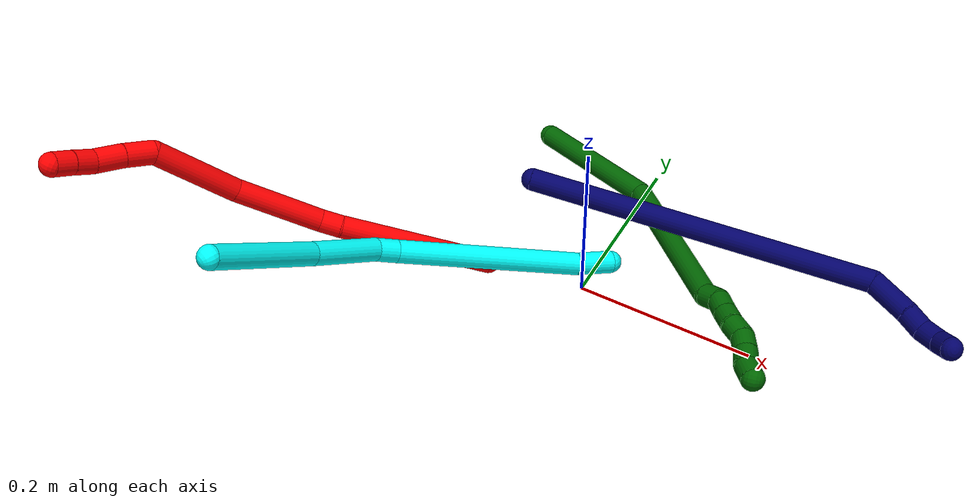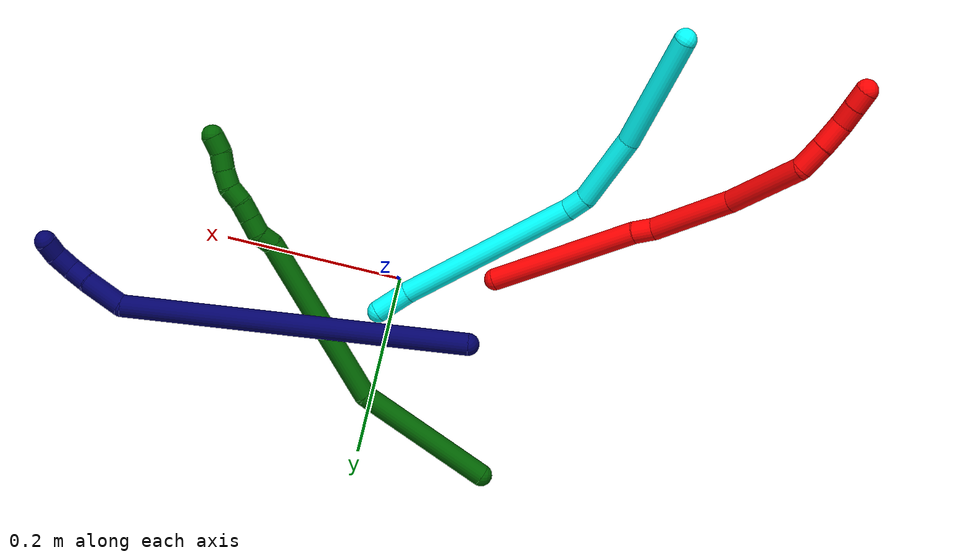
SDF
<sdf version="1.7">
 <world name="default">
  <model name="photoneo_s_sensor">
   <static>1</static>
   <pose>0 0 2 1.57079 1.57079 3.14159</pose>
   <link name="link">
    <inertial><mass>0.1</mass></inertial>
    <sensor name="sensor" type="depth">
     <update_rate>30</update_rate>
     <camera>
      <horizontal_fov>1.22</horizontal_fov>
      <image><width>1920</width><height>1200</height><format>B8G8R8</format></image>
      <clip><near>0.1</near><far>4</far></clip>
      <depth_camera><output>points</output></depth_camera>
     </camera>
     <plugin name="camera_plugin" filename="libgazebo_ros_depth_camera.so">
      <baseline>0.2</baseline>
      <alwaysOn>1</alwaysOn>
      <updateRate>0.0</updateRate>
      <cameraName>camera_ir</cameraName>
      <imageTopicName>/camera/color/image_raw</imageTopicName>
      <cameraInfoTopicName>/camera/color/camera_info</cameraInfoTopicName>
      <depthImageTopicName>/camera/depth/image_raw</depthImageTopicName>
      <depthImageCameraInfoTopicName>/camera/depth/camera_info</depthImageCameraInfoTopicName>
      <pointCloudTopicName>/camera/depth/points</pointCloudTopicName>
      <frameName>fr_optical</frameName>
      <pointCloudCutoff>0.1</pointCloudCutoff>
      <pointCloudCutoffMax>2.0</pointCloudCutoffMax>
      <distortionK1>0</distortionK1>
      <distortionK2>0</distortionK2>
      <distortionK3>0</distortionK3>
      <distortionT1>0</distortionT1>
      <distortionT2>0</distortionT2>
      <CxPrime>0</CxPrime>
      <Cx>0</Cx>
      <Cy>0</Cy>
      <focalLength>0</focalLength>
      <hackBaseline>0</hackBaseline>
     </plugin>
    </sensor>
   </link>
  </model>
  <model name="2">
   <static>0</static>
   <link name="2">
    <collision name="collision-cylinder-e_1_1_4">
     <pose>-0.020642 -0.007732 0.083497 0.092337 -0.241371 -0.011206</pose>
     <geometry><cylinder><radius>0.0125</radius><length>0.172715</length></cylinder></geometry>
     <surface>
      <friction><ode><mu>1.16</mu><mu2>1.16</mu2><slip1>0</slip1><slip2>0</slip2></ode></friction>
      <contact><ode><kp>1e+06</kp><kd>1</kd><max_vel>0</max_vel><min_depth>0.001</min_depth></ode></contact>
     </surface>
    </collision>
    <visual name="visual-cylinder-e_1_1_4">
     <pose>-0.020642 -0.007732 0.083497 0.092337 -0.241371 -0.011206</pose>
     <geometry><cylinder><radius>0.0125</radius><length>0.172715</length></cylinder></geometry>
     <material><ambient>1 0 0 1</ambient></material>
    </visual>
    <collision name="collision-cylinder-e_2_4_5">
     <pose>-0.04294 -0.015278 0.178597 -0.015965 -0.141639 0.001133</pose>
     <geometry><cylinder><radius>0.0125</radius><length>0.023446</length></cylinder></geometry>
     <surface>
      <friction><ode><mu>1.16</mu><mu2>1.16</mu2><slip1>0</slip1><slip2>0</slip2></ode></friction>
      <contact><ode><kp>1e+06</kp><kd>1</kd><max_vel>0</max_vel><min_depth>0.001</min_depth></ode></contact>
     </surface>
    </collision>
    <visual name="visual-cylinder-e_2_4_5">
     <pose>-0.04294 -0.015278 0.178597 -0.015965 -0.141639 0.001133</pose>
     <geometry><cylinder><radius>0.0125</radius><length>0.023446</length></cylinder></geometry>
     <material><ambient>1 0 0 1</ambient></material>
    </visual>
    <collision name="collision-cylinder-e_3_5_6">
     <pose>-0.05367 -0.027262 0.23691 0.254862 -0.185852 -0.02388</pose>
     <geometry><cylinder><radius>0.0125</radius><length>0.098227</length></cylinder></geometry>
     <surface>
      <friction><ode><mu>1.16</mu><mu2>1.16</mu2><slip1>0</slip1><slip2>0</slip2></ode></friction>
      <contact><ode><kp>1e+06</kp><kd>1</kd><max_vel>0</max_vel><min_depth>0.001</min_depth></ode></contact>
     </surface>
    </collision>
    <visual name="visual-cylinder-e_3_5_6">
     <pose>-0.05367 -0.027262 0.23691 0.254862 -0.185852 -0.02388</pose>
     <geometry><cylinder><radius>0.0125</radius><length>0.098227</length></cylinder></geometry>
     <material><ambient>1 0 0 1</ambient></material>
    </visual>
    <collision name="collision-cylinder-e_4_6_7">
     <pose>-0.071015 -0.060711 0.327048 0.455612 -0.169361 -0.039352</pose>
     <geometry><cylinder><radius>0.0125</radius><length>0.09813</length></cylinder></geometry>
     <surface>
      <friction><ode><mu>1.16</mu><mu2>1.16</mu2><slip1>0</slip1><slip2>0</slip2></ode></friction>
      <contact><ode><kp>1e+06</kp><kd>1</kd><max_vel>0</max_vel><min_depth>0.001</min_depth></ode></contact>
     </surface>
    </collision>
    <visual name="visual-cylinder-e_4_6_7">
     <pose>-0.071015 -0.060711 0.327048 0.455612 -0.169361 -0.039352</pose>
     <geometry><cylinder><radius>0.0125</radius><length>0.09813</length></cylinder></geometry>
     <material><ambient>1 0 0 1</ambient></material>
    </visual>
    <collision name="collision-cylinder-e_5_7_8">
     <pose>-0.089216 -0.085732 0.382378 0.304543 -0.672313 -0.10714</pose>
     <geometry><cylinder><radius>0.0125</radius><length>0.031889</length></cylinder></geometry>
     <surface>
      <friction><ode><mu>1.16</mu><mu2>1.16</mu2><slip1>0</slip1><slip2>0</slip2></ode></friction>
      <contact><ode><kp>1e+06</kp><kd>1</kd><max_vel>0</max_vel><min_depth>0.001</min_depth></ode></contact>
     </surface>
    </collision>
    <visual name="visual-cylinder-e_5_7_8">
     <pose>-0.089216 -0.085732 0.382378 0.304543 -0.672313 -0.10714</pose>
     <geometry><cylinder><radius>0.0125</radius><length>0.031889</length></cylinder></geometry>
     <material><ambient>1 0 0 1</ambient></material>
    </visual>
    <collision name="collision-cylinder-e_6_8_9">
     <pose>-0.109859 -0.092908 0.405238 0.303796 -0.750654 -0.12048</pose>
     <geometry><cylinder><radius>0.0125</radius><length>0.031411</length></cylinder></geometry>
     <surface>
      <friction><ode><mu>1.16</mu><mu2>1.16</mu2><slip1>0</slip1><slip2>0</slip2></ode></friction>
      <contact><ode><kp>1e+06</kp><kd>1</kd><max_vel>0</max_vel><min_depth>0.001</min_depth></ode></contact>
     </surface>
    </collision>
    <visual name="visual-cylinder-e_6_8_9">
     <pose>-0.109859 -0.092908 0.405238 0.303796 -0.750654 -0.12048</pose>
     <geometry><cylinder><radius>0.0125</radius><length>0.031411</length></cylinder></geometry>
     <material><ambient>1 0 0 1</ambient></material>
    </visual>
    <collision name="collision-cylinder-e_7_9_10">
     <pose>-0.127545 -0.101467 0.4239 0.586844 -0.645927 -0.201559</pose>
     <geometry><cylinder><radius>0.0125</radius><length>0.02317</length></cylinder></geometry>
     <surface>
      <friction><ode><mu>1.16</mu><mu2>1.16</mu2><slip1>0</slip1><slip2>0</slip2></ode></friction>
      <contact><ode><kp>1e+06</kp><kd>1</kd><max_vel>0</max_vel><min_depth>0.001</min_depth></ode></contact>
     </surface>
    </collision>
    <visual name="visual-cylinder-e_7_9_10">
     <pose>-0.127545 -0.101467 0.4239 0.586844 -0.645927 -0.201559</pose>
     <geometry><cylinder><radius>0.0125</radius><length>0.02317</length></cylinder></geometry>
     <material><ambient>1 0 0 1</ambient></material>
    </visual>
    <collision name="collision-cylinder-e_8_10_2">
     <pose>-0.141103 -0.110845 0.438598 0.546604 -0.677259 -0.196815</pose>
     <geometry><cylinder><radius>0.0125</radius><length>0.021012</length></cylinder></geometry>
     <surface>
      <friction><ode><mu>1.16</mu><mu2>1.16</mu2><slip1>0</slip1><slip2>0</slip2></ode></friction>
      <contact><ode><kp>1e+06</kp><kd>1</kd><max_vel>0</max_vel><min_depth>0.001</min_depth></ode></contact>
     </surface>
    </collision>
    <visual name="visual-cylinder-e_8_10_2">
     <pose>-0.141103 -0.110845 0.438598 0.546604 -0.677259 -0.196815</pose>
     <geometry><cylinder><radius>0.0125</radius><length>0.021012</length></cylinder></geometry>
     <material><ambient>1 0 0 1</ambient></material>
    </visual>
    <collision name="collision-sphere-2">
     <pose>-0.147686 -0.115101 0.445592 0 -0 0</pose>
     <geometry><sphere><radius>0.0125</radius></sphere></geometry>
     <surface>
      <friction><ode><mu>1.16</mu><mu2>1.16</mu2><slip1>0</slip1><slip2>0</slip2></ode></friction>
      <contact><ode><kp>1e+06</kp><kd>1</kd><max_vel>0</max_vel><min_depth>0.001</min_depth></ode></contact>
     </surface>
    </collision>
    <visual name="visual-sphere-2">
     <pose>-0.147686 -0.115101 0.445592 0 -0 0</pose>
     <geometry><sphere><radius>0.0125</radius></sphere></geometry>
     <material><ambient>1 0 0 1</ambient></material>
    </visual>
    <collision name="collision-sphere-10">
     <pose>-0.134519 -0.106589 0.431604 0 -0 0</pose>
     <geometry><sphere><radius>0.0125</radius></sphere></geometry>
     <surface>
      <friction><ode><mu>1.16</mu><mu2>1.16</mu2><slip1>0</slip1><slip2>0</slip2></ode></friction>
      <contact><ode><kp>1e+06</kp><kd>1</kd><max_vel>0</max_vel><min_depth>0.001</min_depth></ode></contact>
     </surface>
    </collision>
    <visual name="visual-sphere-10">
     <pose>-0.134519 -0.106589 0.431604 0 -0 0</pose>
     <geometry><sphere><radius>0.0125</radius></sphere></geometry>
     <material><ambient>1 0 0 1</ambient></material>
    </visual>
    <collision name="collision-sphere-9">
     <pose>-0.120572 -0.096344 0.416197 0 -0 0</pose>
     <geometry><sphere><radius>0.0125</radius></sphere></geometry>
     <surface>
      <friction><ode><mu>1.16</mu><mu2>1.16</mu2><slip1>0</slip1><slip2>0</slip2></ode></friction>
      <contact><ode><kp>1e+06</kp><kd>1</kd><max_vel>0</max_vel><min_depth>0.001</min_depth></ode></contact>
     </surface>
    </collision>
    <visual name="visual-sphere-9">
     <pose>-0.120572 -0.096344 0.416197 0 -0 0</pose>
     <geometry><sphere><radius>0.0125</radius></sphere></geometry>
     <material><ambient>1 0 0 1</ambient></material>
    </visual>
    <collision name="collision-sphere-4">
     <pose>-0.041285 -0.015464 0.166993 0 -0 0</pose>
     <geometry><sphere><radius>0.0125</radius></sphere></geometry>
     <surface>
      <friction><ode><mu>1.16</mu><mu2>1.16</mu2><slip1>0</slip1><slip2>0</slip2></ode></friction>
      <contact><ode><kp>1e+06</kp><kd>1</kd><max_vel>0</max_vel><min_depth>0.001</min_depth></ode></contact>
     </surface>
    </collision>
    <visual name="visual-sphere-4">
     <pose>-0.041285 -0.015464 0.166993 0 -0 0</pose>
     <geometry><sphere><radius>0.0125</radius></sphere></geometry>
     <material><ambient>1 0 0 1</ambient></material>
    </visual>
    <collision name="collision-sphere-1">
     <geometry><sphere><radius>0.0125</radius></sphere></geometry>
     <surface>
      <friction><ode><mu>1.16</mu><mu2>1.16</mu2><slip1>0</slip1><slip2>0</slip2></ode></friction>
      <contact><ode><kp>1e+06</kp><kd>1</kd><max_vel>0</max_vel><min_depth>0.001</min_depth></ode></contact>
     </surface>
    </collision>
    <visual name="visual-sphere-1">
     <geometry><sphere><radius>0.0125</radius></sphere></geometry>
     <material><ambient>1 0 0 1</ambient></material>
    </visual>
    <collision name="collision-sphere-8">
     <pose>-0.099146 -0.089473 0.394279 0 -0 0</pose>
     <geometry><sphere><radius>0.0125</radius></sphere></geometry>
     <surface>
      <friction><ode><mu>1.16</mu><mu2>1.16</mu2><slip1>0</slip1><slip2>0</slip2></ode></friction>
      <contact><ode><kp>1e+06</kp><kd>1</kd><max_vel>0</max_vel><min_depth>0.001</min_depth></ode></contact>
     </surface>
    </collision>
    <visual name="visual-sphere-8">
     <pose>-0.099146 -0.089473 0.394279 0 -0 0</pose>
     <geometry><sphere><radius>0.0125</radius></sphere></geometry>
     <material><ambient>1 0 0 1</ambient></material>
    </visual>
    <collision name="collision-sphere-5">
     <pose>-0.044595 -0.015093 0.190202 0 -0 0</pose>
     <geometry><sphere><radius>0.0125</radius></sphere></geometry>
     <surface>
      <friction><ode><mu>1.16</mu><mu2>1.16</mu2><slip1>0</slip1><slip2>0</slip2></ode></friction>
      <contact><ode><kp>1e+06</kp><kd>1</kd><max_vel>0</max_vel><min_depth>0.001</min_depth></ode></contact>
     </surface>
    </collision>
    <visual name="visual-sphere-5">
     <pose>-0.044595 -0.015093 0.190202 0 -0 0</pose>
     <geometry><sphere><radius>0.0125</radius></sphere></geometry>
     <material><ambient>1 0 0 1</ambient></material>
    </visual>
    <collision name="collision-sphere-6">
     <pose>-0.062745 -0.039431 0.283618 0 -0 0</pose>
     <geometry><sphere><radius>0.0125</radius></sphere></geometry>
     <surface>
      <friction><ode><mu>1.16</mu><mu2>1.16</mu2><slip1>0</slip1><slip2>0</slip2></ode></friction>
      <contact><ode><kp>1e+06</kp><kd>1</kd><max_vel>0</max_vel><min_depth>0.001</min_depth></ode></contact>
     </surface>
    </collision>
    <visual name="visual-sphere-6">
     <pose>-0.062745 -0.039431 0.283618 0 -0 0</pose>
     <geometry><sphere><radius>0.0125</radius></sphere></geometry>
     <material><ambient>1 0 0 1</ambient></material>
    </visual>
    <collision name="collision-sphere-7">
     <pose>-0.079285 -0.081992 0.370478 0 -0 0</pose>
     <geometry><sphere><radius>0.0125</radius></sphere></geometry>
     <surface>
      <friction><ode><mu>1.16</mu><mu2>1.16</mu2><slip1>0</slip1><slip2>0</slip2></ode></friction>
      <contact><ode><kp>1e+06</kp><kd>1</kd><max_vel>0</max_vel><min_depth>0.001</min_depth></ode></contact>
     </surface>
    </collision>
    <visual name="visual-sphere-7">
     <pose>-0.079285 -0.081992 0.370478 0 -0 0</pose>
     <geometry><sphere><radius>0.0125</radius></sphere></geometry>
     <material><ambient>1 0 0 1</ambient></material>
    </visual>
    <inertial>
     <pose>-0.058057 -0.041323 0.235866 0 -0 0</pose>
     <mass>0.5</mass>
     <inertia>
      <ixx>0.000574</ixx>
      <ixy>0</ixy>
      <ixz>0</ixz>
      <iyy>0.000581</iyy>
      <iyz>0</iyz>
      <izz>0.000274</izz>
     </inertia>
    </inertial>
   </link>
   <pose>-0.104401 -0.025162 0.011535 -1.15652 -0.284355 1.72975</pose>
  </model>
  <model name="3">
   <static>0</static>
   <link name="3">
    <collision name="collision-cylinder-e_1_1_4">
     <pose>0.040071 0.000463 -0.057289 -3.13351 0.610347 -3.11593</pose>
     <geometry><cylinder><radius>0.0125</radius><length>0.139827</length></cylinder></geometry>
     <surface>
      <friction><ode><mu>1.16</mu><mu2>1.16</mu2><slip1>0</slip1><slip2>0</slip2></ode></friction>
      <contact><ode><kp>1e+06</kp><kd>1</kd><max_vel>0</max_vel><min_depth>0.001</min_depth></ode></contact>
     </surface>
    </collision>
    <visual name="visual-cylinder-e_1_1_4">
     <pose>0.040071 0.000463 -0.057289 -3.13351 0.610347 -3.11593</pose>
     <geometry><cylinder><radius>0.0125</radius><length>0.139827</length></cylinder></geometry>
     <material><ambient>0.003922 1 0.996078 1</ambient></material>
    </visual>
    <collision name="collision-cylinder-e_2_4_5">
     <pose>0.099858 0.005992 -0.152269 -3.008 0.478276 -2.60602</pose>
     <geometry><cylinder><radius>0.0125</radius><length>0.085675</length></cylinder></geometry>
     <surface>
      <friction><ode><mu>1.16</mu><mu2>1.16</mu2><slip1>0</slip1><slip2>0</slip2></ode></friction>
      <contact><ode><kp>1e+06</kp><kd>1</kd><max_vel>0</max_vel><min_depth>0.001</min_depth></ode></contact>
     </surface>
    </collision>
    <visual name="visual-cylinder-e_2_4_5">
     <pose>0.099858 0.005992 -0.152269 -3.008 0.478276 -2.60602</pose>
     <geometry><cylinder><radius>0.0125</radius><length>0.085675</length></cylinder></geometry>
     <material><ambient>0.003922 1 0.996078 1</ambient></material>
    </visual>
    <collision name="collision-cylinder-e_3_5_6">
     <pose>0.123813 0.016175 -0.200367 -2.68455 0.350474 -1.30131</pose>
     <geometry><cylinder><radius>0.0125</radius><length>0.024696</length></cylinder></geometry>
     <surface>
      <friction><ode><mu>1.16</mu><mu2>1.16</mu2><slip1>0</slip1><slip2>0</slip2></ode></friction>
      <contact><ode><kp>1e+06</kp><kd>1</kd><max_vel>0</max_vel><min_depth>0.001</min_depth></ode></contact>
     </surface>
    </collision>
    <visual name="visual-cylinder-e_3_5_6">
     <pose>0.123813 0.016175 -0.200367 -2.68455 0.350474 -1.30131</pose>
     <geometry><cylinder><radius>0.0125</radius><length>0.024696</length></cylinder></geometry>
     <material><ambient>0.003922 1 0.996078 1</ambient></material>
    </visual>
    <collision name="collision-cylinder-e_4_6_7">
     <pose>0.151073 0.075208 -0.297197 -2.58381 0.222259 -0.743178</pose>
     <geometry><cylinder><radius>0.0125</radius><length>0.208861</length></cylinder></geometry>
     <surface>
      <friction><ode><mu>1.16</mu><mu2>1.16</mu2><slip1>0</slip1><slip2>0</slip2></ode></friction>
      <contact><ode><kp>1e+06</kp><kd>1</kd><max_vel>0</max_vel><min_depth>0.001</min_depth></ode></contact>
     </surface>
    </collision>
    <visual name="visual-cylinder-e_4_6_7">
     <pose>0.151073 0.075208 -0.297197 -2.58381 0.222259 -0.743178</pose>
     <geometry><cylinder><radius>0.0125</radius><length>0.208861</length></cylinder></geometry>
     <material><ambient>0.003922 1 0.996078 1</ambient></material>
    </visual>
    <collision name="collision-cylinder-e_5_7_2">
     <pose>0.177184 0.138073 -0.40177 -2.68354 0.151568 -0.629753</pose>
     <geometry><cylinder><radius>0.0125</radius><length>0.040942</length></cylinder></geometry>
     <surface>
      <friction><ode><mu>1.16</mu><mu2>1.16</mu2><slip1>0</slip1><slip2>0</slip2></ode></friction>
      <contact><ode><kp>1e+06</kp><kd>1</kd><max_vel>0</max_vel><min_depth>0.001</min_depth></ode></contact>
     </surface>
    </collision>
    <visual name="visual-cylinder-e_5_7_2">
     <pose>0.177184 0.138073 -0.40177 -2.68354 0.151568 -0.629753</pose>
     <geometry><cylinder><radius>0.0125</radius><length>0.040942</length></cylinder></geometry>
     <material><ambient>0.003922 1 0.996078 1</ambient></material>
    </visual>
    <collision name="collision-sphere-2">
     <pose>0.180274 0.147021 -0.41992 0 -0 0</pose>
     <geometry><sphere><radius>0.0125</radius></sphere></geometry>
     <surface>
      <friction><ode><mu>1.16</mu><mu2>1.16</mu2><slip1>0</slip1><slip2>0</slip2></ode></friction>
      <contact><ode><kp>1e+06</kp><kd>1</kd><max_vel>0</max_vel><min_depth>0.001</min_depth></ode></contact>
     </surface>
    </collision>
    <visual name="visual-sphere-2">
     <pose>0.180274 0.147021 -0.41992 0 -0 0</pose>
     <geometry><sphere><radius>0.0125</radius></sphere></geometry>
     <material><ambient>0.003922 1 0.996078 1</ambient></material>
    </visual>
    <collision name="collision-sphere-7">
     <pose>0.174093 0.129124 -0.38362 0 -0 0</pose>
     <geometry><sphere><radius>0.0125</radius></sphere></geometry>
     <surface>
      <friction><ode><mu>1.16</mu><mu2>1.16</mu2><slip1>0</slip1><slip2>0</slip2></ode></friction>
      <contact><ode><kp>1e+06</kp><kd>1</kd><max_vel>0</max_vel><min_depth>0.001</min_depth></ode></contact>
     </surface>
    </collision>
    <visual name="visual-sphere-7">
     <pose>0.174093 0.129124 -0.38362 0 -0 0</pose>
     <geometry><sphere><radius>0.0125</radius></sphere></geometry>
     <material><ambient>0.003922 1 0.996078 1</ambient></material>
    </visual>
    <collision name="collision-sphere-6">
     <pose>0.128053 0.021293 -0.210774 0 -0 0</pose>
     <geometry><sphere><radius>0.0125</radius></sphere></geometry>
     <surface>
      <friction><ode><mu>1.16</mu><mu2>1.16</mu2><slip1>0</slip1><slip2>0</slip2></ode></friction>
      <contact><ode><kp>1e+06</kp><kd>1</kd><max_vel>0</max_vel><min_depth>0.001</min_depth></ode></contact>
     </surface>
    </collision>
    <visual name="visual-sphere-6">
     <pose>0.128053 0.021293 -0.210774 0 -0 0</pose>
     <geometry><sphere><radius>0.0125</radius></sphere></geometry>
     <material><ambient>0.003922 1 0.996078 1</ambient></material>
    </visual>
    <collision name="collision-sphere-5">
     <pose>0.119574 0.011057 -0.18996 0 -0 0</pose>
     <geometry><sphere><radius>0.0125</radius></sphere></geometry>
     <surface>
      <friction><ode><mu>1.16</mu><mu2>1.16</mu2><slip1>0</slip1><slip2>0</slip2></ode></friction>
      <contact><ode><kp>1e+06</kp><kd>1</kd><max_vel>0</max_vel><min_depth>0.001</min_depth></ode></contact>
     </surface>
    </collision>
    <visual name="visual-sphere-5">
     <pose>0.119574 0.011057 -0.18996 0 -0 0</pose>
     <geometry><sphere><radius>0.0125</radius></sphere></geometry>
     <material><ambient>0.003922 1 0.996078 1</ambient></material>
    </visual>
    <collision name="collision-sphere-1">
     <geometry><sphere><radius>0.0125</radius></sphere></geometry>
     <surface>
      <friction><ode><mu>1.16</mu><mu2>1.16</mu2><slip1>0</slip1><slip2>0</slip2></ode></friction>
      <contact><ode><kp>1e+06</kp><kd>1</kd><max_vel>0</max_vel><min_depth>0.001</min_depth></ode></contact>
     </surface>
    </collision>
    <visual name="visual-sphere-1">
     <geometry><sphere><radius>0.0125</radius></sphere></geometry>
     <material><ambient>0.003922 1 0.996078 1</ambient></material>
    </visual>
    <collision name="collision-sphere-4">
     <pose>0.080142 0.000926 -0.114577 0 -0 0</pose>
     <geometry><sphere><radius>0.0125</radius></sphere></geometry>
     <surface>
      <friction><ode><mu>1.16</mu><mu2>1.16</mu2><slip1>0</slip1><slip2>0</slip2></ode></friction>
      <contact><ode><kp>1e+06</kp><kd>1</kd><max_vel>0</max_vel><min_depth>0.001</min_depth></ode></contact>
     </surface>
    </collision>
    <visual name="visual-sphere-4">
     <pose>0.080142 0.000926 -0.114577 0 -0 0</pose>
     <geometry><sphere><radius>0.0125</radius></sphere></geometry>
     <material><ambient>0.003922 1 0.996078 1</ambient></material>
    </visual>
    <inertial>
     <pose>0.112047 0.044677 -0.209053 0 -0 0</pose>
     <mass>0.5</mass>
     <inertia>
      <ixx>-0.000205</ixx>
      <ixy>0</ixy>
      <ixz>0</ixz>
      <iyy>-0.000673</iyy>
      <iyz>0</iyz>
      <izz>-0.000772</izz>
     </inertia>
    </inertial>
   </link>
   <pose>-0.233705 -0.310716 0.222803 -1.26643 1.4488 3.12329</pose>
  </model>
  <model name="6">
   <static>0</static>
   <link name="6">
    <collision name="collision-cylinder-e_1_1_4">
     <pose>0.034774 -0.026853 0.06655 0.383523 0.45123 0.089063</pose>
     <geometry><cylinder><radius>0.0125</radius><length>0.159489</length></cylinder></geometry>
     <surface>
      <friction><ode><mu>1.16</mu><mu2>1.16</mu2><slip1>0</slip1><slip2>0</slip2></ode></friction>
      <contact><ode><kp>1e+06</kp><kd>1</kd><max_vel>0</max_vel><min_depth>0.001</min_depth></ode></contact>
     </surface>
    </collision>
    <visual name="visual-cylinder-e_1_1_4">
     <pose>0.034774 -0.026853 0.06655 0.383523 0.45123 0.089063</pose>
     <geometry><cylinder><radius>0.0125</radius><length>0.159489</length></cylinder></geometry>
     <material><ambient>0 0.392157 0.003922 1</ambient></material>
    </visual>
    <collision name="collision-cylinder-e_2_4_5">
     <pose>0.13651 -0.104922 0.186552 0.764032 0.735307 0.307048</pose>
     <geometry><cylinder><radius>0.0125</radius><length>0.19964</length></cylinder></geometry>
     <surface>
      <friction><ode><mu>1.16</mu><mu2>1.16</mu2><slip1>0</slip1><slip2>0</slip2></ode></friction>
      <contact><ode><kp>1e+06</kp><kd>1</kd><max_vel>0</max_vel><min_depth>0.001</min_depth></ode></contact>
     </surface>
    </collision>
    <visual name="visual-cylinder-e_2_4_5">
     <pose>0.13651 -0.104922 0.186552 0.764032 0.735307 0.307048</pose>
     <geometry><cylinder><radius>0.0125</radius><length>0.19964</length></cylinder></geometry>
     <material><ambient>0 0.392157 0.003922 1</ambient></material>
    </visual>
    <collision name="collision-cylinder-e_3_5_6">
     <pose>0.206537 -0.161778 0.247696 0.632741 0.311069 0.102572</pose>
     <geometry><cylinder><radius>0.0125</radius><length>0.020037</length></cylinder></geometry>
     <surface>
      <friction><ode><mu>1.16</mu><mu2>1.16</mu2><slip1>0</slip1><slip2>0</slip2></ode></friction>
      <contact><ode><kp>1e+06</kp><kd>1</kd><max_vel>0</max_vel><min_depth>0.001</min_depth></ode></contact>
     </surface>
    </collision>
    <visual name="visual-cylinder-e_3_5_6">
     <pose>0.206537 -0.161778 0.247696 0.632741 0.311069 0.102572</pose>
     <geometry><cylinder><radius>0.0125</radius><length>0.020037</length></cylinder></geometry>
     <material><ambient>0 0.392157 0.003922 1</ambient></material>
    </visual>
    <collision name="collision-cylinder-e_4_6_7">
     <pose>0.217012 -0.172667 0.260474 0.80102 0.79218 0.350488</pose>
     <geometry><cylinder><radius>0.0125</radius><length>0.020815</length></cylinder></geometry>
     <surface>
      <friction><ode><mu>1.16</mu><mu2>1.16</mu2><slip1>0</slip1><slip2>0</slip2></ode></friction>
      <contact><ode><kp>1e+06</kp><kd>1</kd><max_vel>0</max_vel><min_depth>0.001</min_depth></ode></contact>
     </surface>
    </collision>
    <visual name="visual-cylinder-e_4_6_7">
     <pose>0.217012 -0.172667 0.260474 0.80102 0.79218 0.350488</pose>
     <geometry><cylinder><radius>0.0125</radius><length>0.020815</length></cylinder></geometry>
     <material><ambient>0 0.392157 0.003922 1</ambient></material>
    </visual>
    <collision name="collision-cylinder-e_5_7_8">
     <pose>0.231047 -0.183575 0.270475 0.855745 0.72395 0.342001</pose>
     <geometry><cylinder><radius>0.0125</radius><length>0.020008</length></cylinder></geometry>
     <surface>
      <friction><ode><mu>1.16</mu><mu2>1.16</mu2><slip1>0</slip1><slip2>0</slip2></ode></friction>
      <contact><ode><kp>1e+06</kp><kd>1</kd><max_vel>0</max_vel><min_depth>0.001</min_depth></ode></contact>
     </surface>
    </collision>
    <visual name="visual-cylinder-e_5_7_8">
     <pose>0.231047 -0.183575 0.270475 0.855745 0.72395 0.342001</pose>
     <geometry><cylinder><radius>0.0125</radius><length>0.020008</length></cylinder></geometry>
     <material><ambient>0 0.392157 0.003922 1</ambient></material>
    </visual>
    <collision name="collision-cylinder-e_6_8_9">
     <pose>0.243966 -0.193447 0.281922 0.572828 0.680465 0.207763</pose>
     <geometry><cylinder><radius>0.0125</radius><length>0.020002</length></cylinder></geometry>
     <surface>
      <friction><ode><mu>1.16</mu><mu2>1.16</mu2><slip1>0</slip1><slip2>0</slip2></ode></friction>
      <contact><ode><kp>1e+06</kp><kd>1</kd><max_vel>0</max_vel><min_depth>0.001</min_depth></ode></contact>
     </surface>
    </collision>
    <visual name="visual-cylinder-e_6_8_9">
     <pose>0.243966 -0.193447 0.281922 0.572828 0.680465 0.207763</pose>
     <geometry><cylinder><radius>0.0125</radius><length>0.020002</length></cylinder></geometry>
     <material><ambient>0 0.392157 0.003922 1</ambient></material>
    </visual>
    <collision name="collision-cylinder-e_7_9_10">
     <pose>0.258615 -0.201987 0.291838 0.907215 0.989383 0.514312</pose>
     <geometry><cylinder><radius>0.0125</radius><length>0.020001</length></cylinder></geometry>
     <surface>
      <friction><ode><mu>1.16</mu><mu2>1.16</mu2><slip1>0</slip1><slip2>0</slip2></ode></friction>
      <contact><ode><kp>1e+06</kp><kd>1</kd><max_vel>0</max_vel><min_depth>0.001</min_depth></ode></contact>
     </surface>
    </collision>
    <visual name="visual-cylinder-e_7_9_10">
     <pose>0.258615 -0.201987 0.291838 0.907215 0.989383 0.514312</pose>
     <geometry><cylinder><radius>0.0125</radius><length>0.020001</length></cylinder></geometry>
     <material><ambient>0 0.392157 0.003922 1</ambient></material>
    </visual>
    <collision name="collision-cylinder-e_8_10_11">
     <pose>0.275241 -0.211605 0.297148 1.22148 0.972865 0.70908</pose>
     <geometry><cylinder><radius>0.0125</radius><length>0.020007</length></cylinder></geometry>
     <surface>
      <friction><ode><mu>1.16</mu><mu2>1.16</mu2><slip1>0</slip1><slip2>0</slip2></ode></friction>
      <contact><ode><kp>1e+06</kp><kd>1</kd><max_vel>0</max_vel><min_depth>0.001</min_depth></ode></contact>
     </surface>
    </collision>
    <visual name="visual-cylinder-e_8_10_11">
     <pose>0.275241 -0.211605 0.297148 1.22148 0.972865 0.70908</pose>
     <geometry><cylinder><radius>0.0125</radius><length>0.020007</length></cylinder></geometry>
     <material><ambient>0 0.392157 0.003922 1</ambient></material>
    </visual>
    <collision name="collision-cylinder-e_9_11_2">
     <pose>0.290589 -0.222258 0.303673 0.861961 0.786697 0.377085</pose>
     <geometry><cylinder><radius>0.0125</radius><length>0.02</length></cylinder></geometry>
     <surface>
      <friction><ode><mu>1.16</mu><mu2>1.16</mu2><slip1>0</slip1><slip2>0</slip2></ode></friction>
      <contact><ode><kp>1e+06</kp><kd>1</kd><max_vel>0</max_vel><min_depth>0.001</min_depth></ode></contact>
     </surface>
    </collision>
    <visual name="visual-cylinder-e_9_11_2">
     <pose>0.290589 -0.222258 0.303673 0.861961 0.786697 0.377085</pose>
     <geometry><cylinder><radius>0.0125</radius><length>0.02</length></cylinder></geometry>
     <material><ambient>0 0.392157 0.003922 1</ambient></material>
    </visual>
    <collision name="collision-sphere-2">
     <pose>0.297669 -0.227619 0.30827 0 -0 0</pose>
     <geometry><sphere><radius>0.0125</radius></sphere></geometry>
     <surface>
      <friction><ode><mu>1.16</mu><mu2>1.16</mu2><slip1>0</slip1><slip2>0</slip2></ode></friction>
      <contact><ode><kp>1e+06</kp><kd>1</kd><max_vel>0</max_vel><min_depth>0.001</min_depth></ode></contact>
     </surface>
    </collision>
    <visual name="visual-sphere-2">
     <pose>0.297669 -0.227619 0.30827 0 -0 0</pose>
     <geometry><sphere><radius>0.0125</radius></sphere></geometry>
     <material><ambient>0 0.392157 0.003922 1</ambient></material>
    </visual>
    <collision name="collision-sphere-11">
     <pose>0.283509 -0.216897 0.299076 0 -0 0</pose>
     <geometry><sphere><radius>0.0125</radius></sphere></geometry>
     <surface>
      <friction><ode><mu>1.16</mu><mu2>1.16</mu2><slip1>0</slip1><slip2>0</slip2></ode></friction>
      <contact><ode><kp>1e+06</kp><kd>1</kd><max_vel>0</max_vel><min_depth>0.001</min_depth></ode></contact>
     </surface>
    </collision>
    <visual name="visual-sphere-11">
     <pose>0.283509 -0.216897 0.299076 0 -0 0</pose>
     <geometry><sphere><radius>0.0125</radius></sphere></geometry>
     <material><ambient>0 0.392157 0.003922 1</ambient></material>
    </visual>
    <collision name="collision-sphere-10">
     <pose>0.266972 -0.206314 0.295221 0 -0 0</pose>
     <geometry><sphere><radius>0.0125</radius></sphere></geometry>
     <surface>
      <friction><ode><mu>1.16</mu><mu2>1.16</mu2><slip1>0</slip1><slip2>0</slip2></ode></friction>
      <contact><ode><kp>1e+06</kp><kd>1</kd><max_vel>0</max_vel><min_depth>0.001</min_depth></ode></contact>
     </surface>
    </collision>
    <visual name="visual-sphere-10">
     <pose>0.266972 -0.206314 0.295221 0 -0 0</pose>
     <geometry><sphere><radius>0.0125</radius></sphere></geometry>
     <material><ambient>0 0.392157 0.003922 1</ambient></material>
    </visual>
    <collision name="collision-sphere-9">
     <pose>0.250258 -0.19766 0.288455 0 -0 0</pose>
     <geometry><sphere><radius>0.0125</radius></sphere></geometry>
     <surface>
      <friction><ode><mu>1.16</mu><mu2>1.16</mu2><slip1>0</slip1><slip2>0</slip2></ode></friction>
      <contact><ode><kp>1e+06</kp><kd>1</kd><max_vel>0</max_vel><min_depth>0.001</min_depth></ode></contact>
     </surface>
    </collision>
    <visual name="visual-sphere-9">
     <pose>0.250258 -0.19766 0.288455 0 -0 0</pose>
     <geometry><sphere><radius>0.0125</radius></sphere></geometry>
     <material><ambient>0 0.392157 0.003922 1</ambient></material>
    </visual>
    <collision name="collision-sphere-4">
     <pose>0.069549 -0.053706 0.133099 0 -0 0</pose>
     <geometry><sphere><radius>0.0125</radius></sphere></geometry>
     <surface>
      <friction><ode><mu>1.16</mu><mu2>1.16</mu2><slip1>0</slip1><slip2>0</slip2></ode></friction>
      <contact><ode><kp>1e+06</kp><kd>1</kd><max_vel>0</max_vel><min_depth>0.001</min_depth></ode></contact>
     </surface>
    </collision>
    <visual name="visual-sphere-4">
     <pose>0.069549 -0.053706 0.133099 0 -0 0</pose>
     <geometry><sphere><radius>0.0125</radius></sphere></geometry>
     <material><ambient>0 0.392157 0.003922 1</ambient></material>
    </visual>
    <collision name="collision-sphere-1">
     <geometry><sphere><radius>0.0125</radius></sphere></geometry>
     <surface>
      <friction><ode><mu>1.16</mu><mu2>1.16</mu2><slip1>0</slip1><slip2>0</slip2></ode></friction>
      <contact><ode><kp>1e+06</kp><kd>1</kd><max_vel>0</max_vel><min_depth>0.001</min_depth></ode></contact>
     </surface>
    </collision>
    <visual name="visual-sphere-1">
     <geometry><sphere><radius>0.0125</radius></sphere></geometry>
     <material><ambient>0 0.392157 0.003922 1</ambient></material>
    </visual>
    <collision name="collision-sphere-8">
     <pose>0.237673 -0.189234 0.27539 0 -0 0</pose>
     <geometry><sphere><radius>0.0125</radius></sphere></geometry>
     <surface>
      <friction><ode><mu>1.16</mu><mu2>1.16</mu2><slip1>0</slip1><slip2>0</slip2></ode></friction>
      <contact><ode><kp>1e+06</kp><kd>1</kd><max_vel>0</max_vel><min_depth>0.001</min_depth></ode></contact>
     </surface>
    </collision>
    <visual name="visual-sphere-8">
     <pose>0.237673 -0.189234 0.27539 0 -0 0</pose>
     <geometry><sphere><radius>0.0125</radius></sphere></geometry>
     <material><ambient>0 0.392157 0.003922 1</ambient></material>
    </visual>
    <collision name="collision-sphere-5">
     <pose>0.20347 -0.156138 0.240005 0 -0 0</pose>
     <geometry><sphere><radius>0.0125</radius></sphere></geometry>
     <surface>
      <friction><ode><mu>1.16</mu><mu2>1.16</mu2><slip1>0</slip1><slip2>0</slip2></ode></friction>
      <contact><ode><kp>1e+06</kp><kd>1</kd><max_vel>0</max_vel><min_depth>0.001</min_depth></ode></contact>
     </surface>
    </collision>
    <visual name="visual-sphere-5">
     <pose>0.20347 -0.156138 0.240005 0 -0 0</pose>
     <geometry><sphere><radius>0.0125</radius></sphere></geometry>
     <material><ambient>0 0.392157 0.003922 1</ambient></material>
    </visual>
    <collision name="collision-sphere-6">
     <pose>0.209603 -0.167419 0.255387 0 -0 0</pose>
     <geometry><sphere><radius>0.0125</radius></sphere></geometry>
     <surface>
      <friction><ode><mu>1.16</mu><mu2>1.16</mu2><slip1>0</slip1><slip2>0</slip2></ode></friction>
      <contact><ode><kp>1e+06</kp><kd>1</kd><max_vel>0</max_vel><min_depth>0.001</min_depth></ode></contact>
     </surface>
    </collision>
    <visual name="visual-sphere-6">
     <pose>0.209603 -0.167419 0.255387 0 -0 0</pose>
     <geometry><sphere><radius>0.0125</radius></sphere></geometry>
     <material><ambient>0 0.392157 0.003922 1</ambient></material>
    </visual>
    <collision name="collision-sphere-7">
     <pose>0.224421 -0.177915 0.265561 0 -0 0</pose>
     <geometry><sphere><radius>0.0125</radius></sphere></geometry>
     <surface>
      <friction><ode><mu>1.16</mu><mu2>1.16</mu2><slip1>0</slip1><slip2>0</slip2></ode></friction>
      <contact><ode><kp>1e+06</kp><kd>1</kd><max_vel>0</max_vel><min_depth>0.001</min_depth></ode></contact>
     </surface>
    </collision>
    <visual name="visual-sphere-7">
     <pose>0.224421 -0.177915 0.265561 0 -0 0</pose>
     <geometry><sphere><radius>0.0125</radius></sphere></geometry>
     <material><ambient>0 0.392157 0.003922 1</ambient></material>
    </visual>
    <inertial>
     <pose>0.134897 -0.104652 0.174297 0 -0 0</pose>
     <mass>0.5</mass>
     <inertia>
      <ixx>0.000993</ixx>
      <ixy>0</ixy>
      <ixz>0</ixz>
      <iyy>0.00105</iyy>
      <iyz>0</iyz>
      <izz>-0.000118</izz>
     </inertia>
    </inertial>
   </link>
   <pose>-0.141012 0.192745 0.012572 -1.56795 0.421442 -1.36781</pose>
  </model>
  <model name="7">
   <static>0</static>
   <link name="7">
    <collision name="collision-cylinder-e_1_1_4">
     <pose>0.182368 -0.006844 0.061478 0.110863 1.24378 0.079503</pose>
     <geometry><cylinder><radius>0.0125</radius><length>0.385147</length></cylinder></geometry>
     <surface>
      <friction><ode><mu>1.16</mu><mu2>1.16</mu2><slip1>0</slip1><slip2>0</slip2></ode></friction>
      <contact><ode><kp>1e+06</kp><kd>1</kd><max_vel>0</max_vel><min_depth>0.001</min_depth></ode></contact>
     </surface>
    </collision>
    <visual name="visual-cylinder-e_1_1_4">
     <pose>0.182368 -0.006844 0.061478 0.110863 1.24378 0.079503</pose>
     <geometry><cylinder><radius>0.0125</radius><length>0.385147</length></cylinder></geometry>
     <material><ambient>0.003922 0 0.403922 1</ambient></material>
    </visual>
    <collision name="collision-cylinder-e_2_4_5">
     <pose>0.381832 -0.024245 0.134736 0.730687 0.824124 0.331319</pose>
     <geometry><cylinder><radius>0.0125</radius><length>0.046584</length></cylinder></geometry>
     <surface>
      <friction><ode><mu>1.16</mu><mu2>1.16</mu2><slip1>0</slip1><slip2>0</slip2></ode></friction>
      <contact><ode><kp>1e+06</kp><kd>1</kd><max_vel>0</max_vel><min_depth>0.001</min_depth></ode></contact>
     </surface>
    </collision>
    <visual name="visual-cylinder-e_2_4_5">
     <pose>0.381832 -0.024245 0.134736 0.730687 0.824124 0.331319</pose>
     <geometry><cylinder><radius>0.0125</radius><length>0.046584</length></cylinder></geometry>
     <material><ambient>0.003922 0 0.403922 1</ambient></material>
    </visual>
    <collision name="collision-cylinder-e_3_5_6">
     <pose>0.407496 -0.041446 0.151663 0.911786 0.795223 0.406191</pose>
     <geometry><cylinder><radius>0.0125</radius><length>0.024002</length></cylinder></geometry>
     <surface>
      <friction><ode><mu>1.16</mu><mu2>1.16</mu2><slip1>0</slip1><slip2>0</slip2></ode></friction>
      <contact><ode><kp>1e+06</kp><kd>1</kd><max_vel>0</max_vel><min_depth>0.001</min_depth></ode></contact>
     </surface>
    </collision>
    <visual name="visual-cylinder-e_3_5_6">
     <pose>0.407496 -0.041446 0.151663 0.911786 0.795223 0.406191</pose>
     <geometry><cylinder><radius>0.0125</radius><length>0.024002</length></cylinder></geometry>
     <material><ambient>0.003922 0 0.403922 1</ambient></material>
    </visual>
    <collision name="collision-cylinder-e_4_6_7">
     <pose>0.422842 -0.051534 0.166162 0.35289 0.597089 0.109631</pose>
     <geometry><cylinder><radius>0.0125</radius><length>0.024108</length></cylinder></geometry>
     <surface>
      <friction><ode><mu>1.16</mu><mu2>1.16</mu2><slip1>0</slip1><slip2>0</slip2></ode></friction>
      <contact><ode><kp>1e+06</kp><kd>1</kd><max_vel>0</max_vel><min_depth>0.001</min_depth></ode></contact>
     </surface>
    </collision>
    <visual name="visual-cylinder-e_4_6_7">
     <pose>0.422842 -0.051534 0.166162 0.35289 0.597089 0.109631</pose>
     <geometry><cylinder><radius>0.0125</radius><length>0.024108</length></cylinder></geometry>
     <material><ambient>0.003922 0 0.403922 1</ambient></material>
    </visual>
    <collision name="collision-cylinder-e_5_7_2">
     <pose>0.432194 -0.056209 0.185183 0.126495 0.258264 0.016448</pose>
     <geometry><cylinder><radius>0.0125</radius><length>0.020159</length></cylinder></geometry>
     <surface>
      <friction><ode><mu>1.16</mu><mu2>1.16</mu2><slip1>0</slip1><slip2>0</slip2></ode></friction>
      <contact><ode><kp>1e+06</kp><kd>1</kd><max_vel>0</max_vel><min_depth>0.001</min_depth></ode></contact>
     </surface>
    </collision>
    <visual name="visual-cylinder-e_5_7_2">
     <pose>0.432194 -0.056209 0.185183 0.126495 0.258264 0.016448</pose>
     <geometry><cylinder><radius>0.0125</radius><length>0.020159</length></cylinder></geometry>
     <material><ambient>0.003922 0 0.403922 1</ambient></material>
    </visual>
    <collision name="collision-sphere-2">
     <pose>0.434768 -0.057438 0.194851 0 -0 0</pose>
     <geometry><sphere><radius>0.0125</radius></sphere></geometry>
     <surface>
      <friction><ode><mu>1.16</mu><mu2>1.16</mu2><slip1>0</slip1><slip2>0</slip2></ode></friction>
      <contact><ode><kp>1e+06</kp><kd>1</kd><max_vel>0</max_vel><min_depth>0.001</min_depth></ode></contact>
     </surface>
    </collision>
    <visual name="visual-sphere-2">
     <pose>0.434768 -0.057438 0.194851 0 -0 0</pose>
     <geometry><sphere><radius>0.0125</radius></sphere></geometry>
     <material><ambient>0.003922 0 0.403922 1</ambient></material>
    </visual>
    <collision name="collision-sphere-7">
     <pose>0.429619 -0.054979 0.175516 0 -0 0</pose>
     <geometry><sphere><radius>0.0125</radius></sphere></geometry>
     <surface>
      <friction><ode><mu>1.16</mu><mu2>1.16</mu2><slip1>0</slip1><slip2>0</slip2></ode></friction>
      <contact><ode><kp>1e+06</kp><kd>1</kd><max_vel>0</max_vel><min_depth>0.001</min_depth></ode></contact>
     </surface>
    </collision>
    <visual name="visual-sphere-7">
     <pose>0.429619 -0.054979 0.175516 0 -0 0</pose>
     <geometry><sphere><radius>0.0125</radius></sphere></geometry>
     <material><ambient>0.003922 0 0.403922 1</ambient></material>
    </visual>
    <collision name="collision-sphere-6">
     <pose>0.416065 -0.048089 0.156808 0 -0 0</pose>
     <geometry><sphere><radius>0.0125</radius></sphere></geometry>
     <surface>
      <friction><ode><mu>1.16</mu><mu2>1.16</mu2><slip1>0</slip1><slip2>0</slip2></ode></friction>
      <contact><ode><kp>1e+06</kp><kd>1</kd><max_vel>0</max_vel><min_depth>0.001</min_depth></ode></contact>
     </surface>
    </collision>
    <visual name="visual-sphere-6">
     <pose>0.416065 -0.048089 0.156808 0 -0 0</pose>
     <geometry><sphere><radius>0.0125</radius></sphere></geometry>
     <material><ambient>0.003922 0 0.403922 1</ambient></material>
    </visual>
    <collision name="collision-sphere-5">
     <pose>0.398927 -0.034803 0.146518 0 -0 0</pose>
     <geometry><sphere><radius>0.0125</radius></sphere></geometry>
     <surface>
      <friction><ode><mu>1.16</mu><mu2>1.16</mu2><slip1>0</slip1><slip2>0</slip2></ode></friction>
      <contact><ode><kp>1e+06</kp><kd>1</kd><max_vel>0</max_vel><min_depth>0.001</min_depth></ode></contact>
     </surface>
    </collision>
    <visual name="visual-sphere-5">
     <pose>0.398927 -0.034803 0.146518 0 -0 0</pose>
     <geometry><sphere><radius>0.0125</radius></sphere></geometry>
     <material><ambient>0.003922 0 0.403922 1</ambient></material>
    </visual>
    <collision name="collision-sphere-1">
     <geometry><sphere><radius>0.0125</radius></sphere></geometry>
     <surface>
      <friction><ode><mu>1.16</mu><mu2>1.16</mu2><slip1>0</slip1><slip2>0</slip2></ode></friction>
      <contact><ode><kp>1e+06</kp><kd>1</kd><max_vel>0</max_vel><min_depth>0.001</min_depth></ode></contact>
     </surface>
    </collision>
    <visual name="visual-sphere-1">
     <geometry><sphere><radius>0.0125</radius></sphere></geometry>
     <material><ambient>0.003922 0 0.403922 1</ambient></material>
    </visual>
    <collision name="collision-sphere-4">
     <pose>0.364737 -0.013687 0.122955 0 -0 0</pose>
     <geometry><sphere><radius>0.0125</radius></sphere></geometry>
     <surface>
      <friction><ode><mu>1.16</mu><mu2>1.16</mu2><slip1>0</slip1><slip2>0</slip2></ode></friction>
      <contact><ode><kp>1e+06</kp><kd>1</kd><max_vel>0</max_vel><min_depth>0.001</min_depth></ode></contact>
     </surface>
    </collision>
    <visual name="visual-sphere-4">
     <pose>0.364737 -0.013687 0.122955 0 -0 0</pose>
     <geometry><sphere><radius>0.0125</radius></sphere></geometry>
     <material><ambient>0.003922 0 0.403922 1</ambient></material>
    </visual>
    <inertial>
     <pose>0.233426 -0.014271 0.082667 0 -0 0</pose>
     <mass>0.5</mass>
     <inertia>
      <ixx>0.001699</ixx>
      <ixy>0</ixy>
      <ixz>0</ixz>
      <iyy>0.004906</iyy>
      <iyz>0</iyz>
      <izz>-0.004342</izz>
     </inertia>
    </inertial>
   </link>
   <pose>-0.091247 0.052403 0.080799 0.825182 0.230176 0.3902</pose>
  </model>
 </world>
</sdf>
